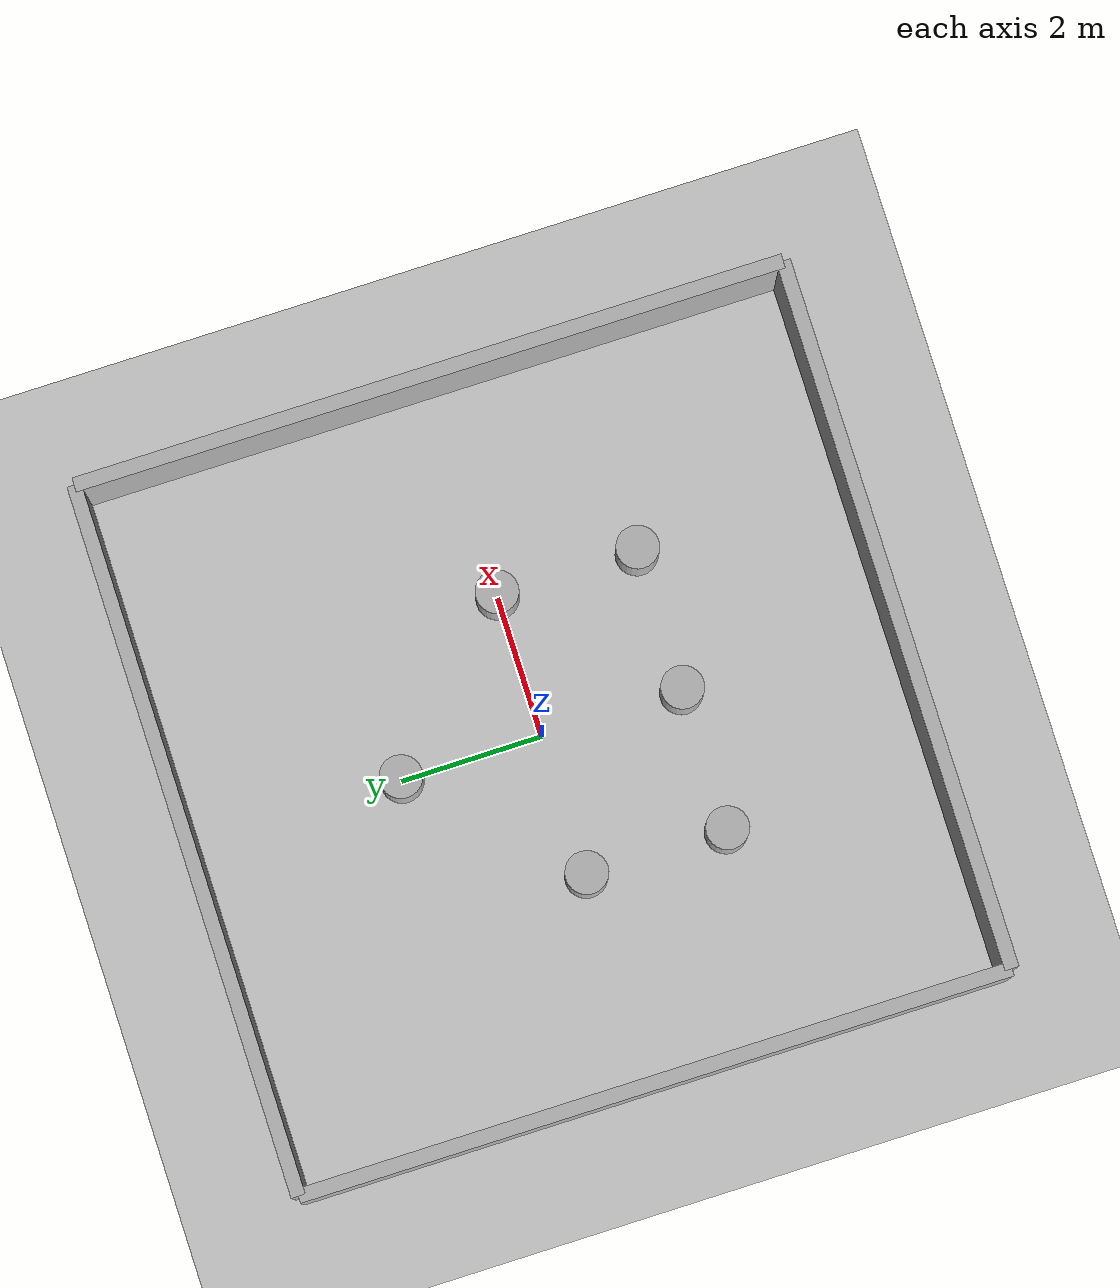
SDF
<?xml version="1.0" ?>
<sdf version="1.6">
  <world name="simple_pillar_world">

    <!-- Ánh sáng + mặt đất -->
    <include>
      <uri>model://sun</uri>
    </include>

    <include>
      <uri>model://ground_plane</uri>
    </include>

    <!-- 🧱 TƯỜNG BAO -->

    <model name="wall_front">
      <static>true</static>
      <pose>0 5 1 0 0 0</pose>
      <link name="link">
        <collision name="collision">
          <geometry><box><size>10 0.2 2</size></box></geometry>
        </collision>
        <visual name="visual">
          <geometry><box><size>10 0.2 2</size></box></geometry>
        </visual>
      </link>
    </model>

    <model name="wall_back">
      <static>true</static>
      <pose>0 -5 1 0 0 0</pose>
      <link name="link">
        <collision name="collision">
          <geometry><box><size>10 0.2 2</size></box></geometry>
        </collision>
        <visual name="visual">
          <geometry><box><size>10 0.2 2</size></box></geometry>
        </visual>
      </link>
    </model>

    <model name="wall_left">
      <static>true</static>
      <pose>-5 0 1 0 0 0</pose>
      <link name="link">
        <collision name="collision">
          <geometry><box><size>0.2 10 2</size></box></geometry>
        </collision>
        <visual name="visual">
          <geometry><box><size>0.2 10 2</size></box></geometry>
        </visual>
      </link>
    </model>

    <model name="wall_right">
      <static>true</static>
      <pose>5 0 1 0 0 0</pose>
      <link name="link">
        <collision name="collision">
          <geometry><box><size>0.2 10 2</size></box></geometry>
        </collision>
        <visual name="visual">
          <geometry><box><size>0.2 10 2</size></box></geometry>
        </visual>
      </link>
    </model>

    <!-- 🔵 CÁC CỘT TRỤ -->

    <!-- Cột 1 -->
    <model name="pillar_1">
      <static>true</static>
      <pose>-2 -2 0.5 0 0 0</pose>
      <link name="link">
        <collision name="collision">
          <geometry>
            <cylinder>
              <radius>0.3</radius>
              <length>1</length>
            </cylinder>
          </geometry>
        </collision>
        <visual name="visual">
          <geometry>
            <cylinder>
              <radius>0.3</radius>
              <length>1</length>
            </cylinder>
          </geometry>
        </visual>
      </link>
    </model>

    <!-- Cột 2 -->
    <model name="pillar_2">
      <static>true</static>
      <pose>0 -2 0.5 0 0 0</pose>
      <link name="link">
        <collision name="collision">
          <geometry>
            <cylinder>
              <radius>0.3</radius>
              <length>1</length>
            </cylinder>
          </geometry>
        </collision>
        <visual name="visual">
          <geometry>
            <cylinder>
              <radius>0.3</radius>
              <length>1</length>
            </cylinder>
          </geometry>
        </visual>
      </link>
    </model>

    <!-- Cột 3 -->
    <model name="pillar_3">
      <static>true</static>
      <pose>2 -2 0.5 0 0 0</pose>
      <link name="link">
        <collision name="collision">
          <geometry>
            <cylinder>
              <radius>0.3</radius>
              <length>1</length>
            </cylinder>
          </geometry>
        </collision>
        <visual name="visual">
          <geometry>
            <cylinder>
              <radius>0.3</radius>
              <length>1</length>
            </cylinder>
          </geometry>
        </visual>
      </link>
    </model>

    <!-- Cột 4 -->
    <model name="pillar_4">
      <static>true</static>
      <pose>-2 0 0.5 0 0 0</pose>
      <link name="link">
        <collision name="collision">
          <geometry>
            <cylinder>
              <radius>0.3</radius>
              <length>1</length>
            </cylinder>
          </geometry>
        </collision>
        <visual name="visual">
          <geometry>
            <cylinder>
              <radius>0.3</radius>
              <length>1</length>
            </cylinder>
          </geometry>
        </visual>
      </link>
    </model>

    <!-- Cột 5 -->
    <model name="pillar_5">
      <static>true</static>
      <pose>2 0 0.5 0 0 0</pose>
      <link name="link">
        <collision name="collision">
          <geometry>
            <cylinder>
              <radius>0.3</radius>
              <length>1</length>
            </cylinder>
          </geometry>
        </collision>
        <visual name="visual">
          <geometry>
            <cylinder>
              <radius>0.3</radius>
              <length>1</length>
            </cylinder>
          </geometry>
        </visual>
      </link>
    </model>

    <!-- Cột 6 -->
    <model name="pillar_6">
      <static>true</static>
      <pose>0 2 0.5 0 0 0</pose>
      <link name="link">
        <collision name="collision">
          <geometry>
            <cylinder>
              <radius>0.3</radius>
              <length>1</length>
            </cylinder>
          </geometry>
        </collision>
        <visual name="visual">
          <geometry>
            <cylinder>
              <radius>0.3</radius>
              <length>1</length>
            </cylinder>
          </geometry>
        </visual>
      </link>
    </model>

    <!-- ⚙️ PHYSICS -->

    <physics type="ode">
      <real_time_update_rate>1000.0</real_time_update_rate>
      <max_step_size>0.001</max_step_size>
    </physics>

  </world>
</sdf>
